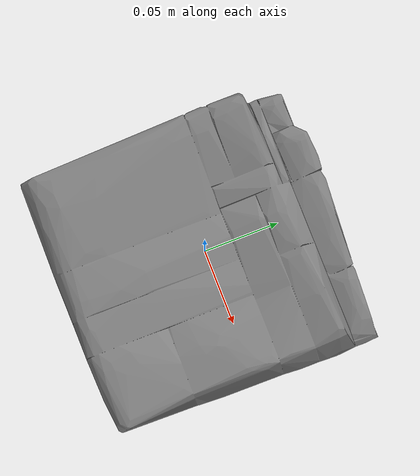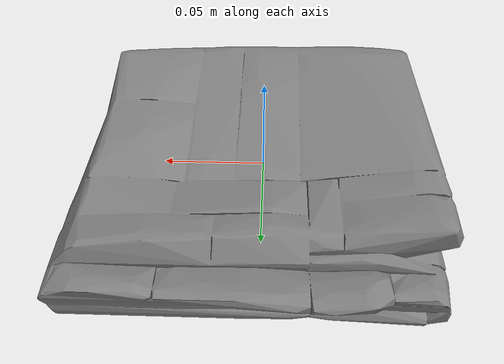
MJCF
<mujoco model="towel_Tag_Dishtowel_Waffle_Gray_Checks_18_x_26_M">
  <default>
    <default class="visual">
      <geom group="2" type="mesh" contype="0" conaffinity="0" />
    </default>
    <default class="collision">
      <geom group="3" type="mesh" />
    </default>
  </default>
  <asset>
    <mesh file="towel_Tag_Dishtowel_Waffle_Gray_Checks_18_x_26_M.stl" />
    <mesh file="towel_Tag_Dishtowel_Waffle_Gray_Checks_18_x_26_M_collision_0.stl" />
    <mesh file="towel_Tag_Dishtowel_Waffle_Gray_Checks_18_x_26_M_collision_1.stl" />
    <mesh file="towel_Tag_Dishtowel_Waffle_Gray_Checks_18_x_26_M_collision_2.stl" />
    <mesh file="towel_Tag_Dishtowel_Waffle_Gray_Checks_18_x_26_M_collision_3.stl" />
    <mesh file="towel_Tag_Dishtowel_Waffle_Gray_Checks_18_x_26_M_collision_4.stl" />
    <mesh file="towel_Tag_Dishtowel_Waffle_Gray_Checks_18_x_26_M_collision_5.stl" />
    <mesh file="towel_Tag_Dishtowel_Waffle_Gray_Checks_18_x_26_M_collision_6.stl" />
    <mesh file="towel_Tag_Dishtowel_Waffle_Gray_Checks_18_x_26_M_collision_7.stl" />
    <mesh file="towel_Tag_Dishtowel_Waffle_Gray_Checks_18_x_26_M_collision_8.stl" />
    <mesh file="towel_Tag_Dishtowel_Waffle_Gray_Checks_18_x_26_M_collision_9.stl" />
    <mesh file="towel_Tag_Dishtowel_Waffle_Gray_Checks_18_x_26_M_collision_10.stl" />
    <mesh file="towel_Tag_Dishtowel_Waffle_Gray_Checks_18_x_26_M_collision_11.stl" />
    <mesh file="towel_Tag_Dishtowel_Waffle_Gray_Checks_18_x_26_M_collision_12.stl" />
    <mesh file="towel_Tag_Dishtowel_Waffle_Gray_Checks_18_x_26_M_collision_13.stl" />
    <mesh file="towel_Tag_Dishtowel_Waffle_Gray_Checks_18_x_26_M_collision_14.stl" />
    <mesh file="towel_Tag_Dishtowel_Waffle_Gray_Checks_18_x_26_M_collision_15.stl" />
  </asset>
  <worldbody>
    <body name="towel_Tag_Dishtowel_Waffle_Gray_Checks_18_x_26_M">
      <geom mesh="towel_Tag_Dishtowel_Waffle_Gray_Checks_18_x_26_M" class="visual" />
      <geom mesh="towel_Tag_Dishtowel_Waffle_Gray_Checks_18_x_26_M_collision_0" class="collision" />
      <geom mesh="towel_Tag_Dishtowel_Waffle_Gray_Checks_18_x_26_M_collision_1" class="collision" />
      <geom mesh="towel_Tag_Dishtowel_Waffle_Gray_Checks_18_x_26_M_collision_2" class="collision" />
      <geom mesh="towel_Tag_Dishtowel_Waffle_Gray_Checks_18_x_26_M_collision_3" class="collision" />
      <geom mesh="towel_Tag_Dishtowel_Waffle_Gray_Checks_18_x_26_M_collision_4" class="collision" />
      <geom mesh="towel_Tag_Dishtowel_Waffle_Gray_Checks_18_x_26_M_collision_5" class="collision" />
      <geom mesh="towel_Tag_Dishtowel_Waffle_Gray_Checks_18_x_26_M_collision_6" class="collision" />
      <geom mesh="towel_Tag_Dishtowel_Waffle_Gray_Checks_18_x_26_M_collision_7" class="collision" />
      <geom mesh="towel_Tag_Dishtowel_Waffle_Gray_Checks_18_x_26_M_collision_8" class="collision" />
      <geom mesh="towel_Tag_Dishtowel_Waffle_Gray_Checks_18_x_26_M_collision_9" class="collision" />
      <geom mesh="towel_Tag_Dishtowel_Waffle_Gray_Checks_18_x_26_M_collision_10" class="collision" />
      <geom mesh="towel_Tag_Dishtowel_Waffle_Gray_Checks_18_x_26_M_collision_11" class="collision" />
      <geom mesh="towel_Tag_Dishtowel_Waffle_Gray_Checks_18_x_26_M_collision_12" class="collision" />
      <geom mesh="towel_Tag_Dishtowel_Waffle_Gray_Checks_18_x_26_M_collision_13" class="collision" />
      <geom mesh="towel_Tag_Dishtowel_Waffle_Gray_Checks_18_x_26_M_collision_14" class="collision" />
      <geom mesh="towel_Tag_Dishtowel_Waffle_Gray_Checks_18_x_26_M_collision_15" class="collision" />
    </body>
  </worldbody>
</mujoco>
